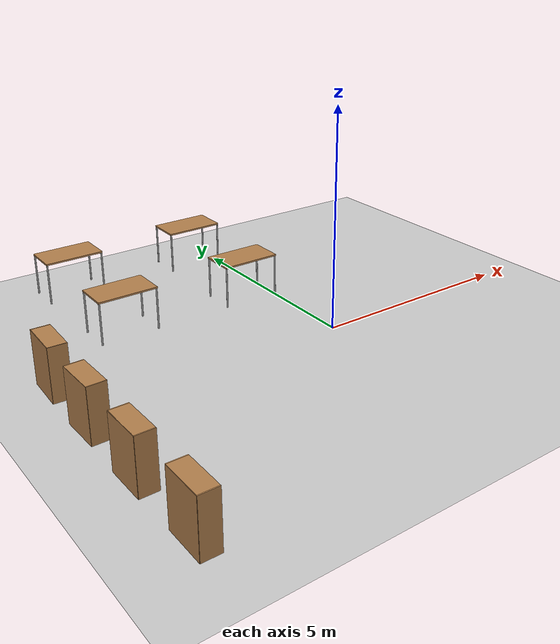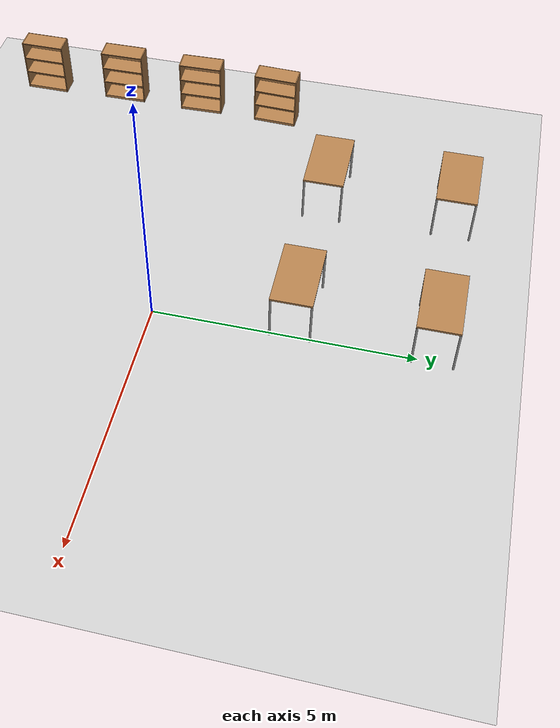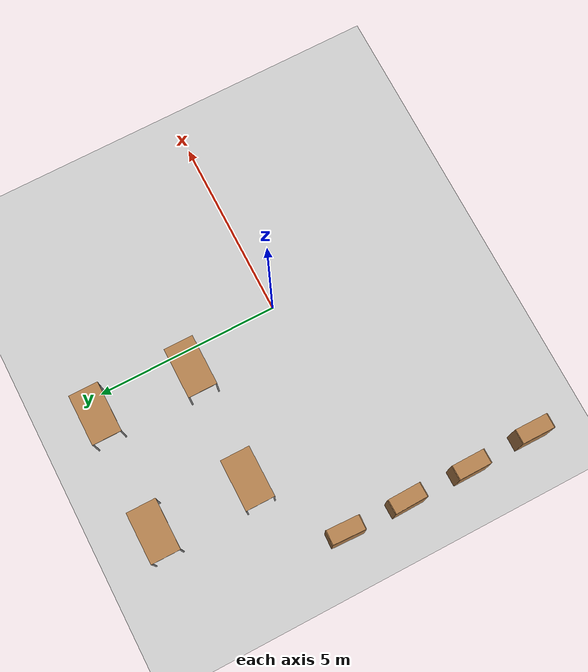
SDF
<sdf version="1.6">
 <world name="default">
  <light name="sun" type="directional">
   <pose>0 0 10 0 -0 0</pose>
   <diffuse>0.8 0.8 0.8 1</diffuse>
   <specular>0.1 0.1 0.1 1</specular>
   <attenuation>
    <range>1000</range>
    <constant>0.9</constant>
    <linear>0.01</linear>
    <quadratic>0.001</quadratic>
   </attenuation>
   <direction>-0.5 0.5 -1</direction>
  </light>
  <model name="ground_plane">
   <static>1</static>
   <link name="link">
    <collision name="collision">
     <geometry><plane><normal>0 0 1</normal><size>100 100</size></plane></geometry>
     <surface><friction><ode><mu>100</mu><mu2>50</mu2></ode></friction></surface>
    </collision>
    <visual name="visual">
     <cast_shadows>0</cast_shadows>
     <geometry><plane><normal>0 0 1</normal><size>100 100</size></plane></geometry>
     <material>
      <script><uri>file://media/materials/scripts/gazebo.material</uri><name>Gazebo/Grey</name></script>
     </material>
    </visual>
   </link>
  </model>
  <gravity>0 0 -9.8</gravity>
  <magnetic_field>6e-06 2.3e-05 -4.2e-05</magnetic_field>
  <atmosphere type="adiabatic"/>
  <physics name="default_physics" default="0" type="ode">
   <max_step_size>0.001</max_step_size>
   <real_time_factor>1</real_time_factor>
   <real_time_update_rate>1000</real_time_update_rate>
  </physics>
  <scene><ambient>0.4 0.4 0.4 1</ambient><background>0.7 0.7 0.7 1</background><shadows>1</shadows></scene>
  <spherical_coordinates>
   <surface_model>EARTH_WGS84</surface_model>
   <latitude_deg>0</latitude_deg>
   <longitude_deg>0</longitude_deg>
   <elevation>0</elevation>
   <heading_deg>0</heading_deg>
  </spherical_coordinates>
  <model name="table">
   <static>0</static>
   <link name="link">
    <collision name="surface">
     <pose>0 0 1 0 -0 0</pose>
     <geometry><box><size>1.5 0.8 0.03</size></box></geometry>
     <surface><friction><ode><mu>0.6</mu><mu2>0.6</mu2></ode></friction></surface>
    </collision>
    <visual name="visual1">
     <pose>0 0 1 0 -0 0</pose>
     <geometry><box><size>1.4 0.8 0.04</size></box></geometry>
     <material>
      <script><uri>file://media/materials/scripts/gazebo.material</uri><name>Gazebo/Wood</name></script>
     </material>
    </visual>
    <collision name="front_left_leg">
     <pose>0.68 0.38 0.5 0 -0 0</pose>
     <geometry><cylinder><radius>0.02</radius><length>1</length></cylinder></geometry>
    </collision>
    <visual name="front_left_leg">
     <pose>0.68 0.38 0.5 0 -0 0</pose>
     <geometry><cylinder><radius>0.02</radius><length>1</length></cylinder></geometry>
     <material>
      <script><uri>file://media/materials/scripts/gazebo.material</uri><name>Gazebo/Grey</name></script>
     </material>
    </visual>
    <collision name="front_right_leg">
     <pose>0.68 -0.38 0.5 0 -0 0</pose>
     <geometry><cylinder><radius>0.02</radius><length>1</length></cylinder></geometry>
    </collision>
    <visual name="front_right_leg">
     <pose>0.68 -0.38 0.5 0 -0 0</pose>
     <geometry><cylinder><radius>0.02</radius><length>1</length></cylinder></geometry>
     <material>
      <script><uri>file://media/materials/scripts/gazebo.material</uri><name>Gazebo/Grey</name></script>
     </material>
    </visual>
    <collision name="back_right_leg">
     <pose>-0.68 -0.38 0.5 0 -0 0</pose>
     <geometry><cylinder><radius>0.02</radius><length>1</length></cylinder></geometry>
    </collision>
    <visual name="back_right_leg">
     <pose>-0.68 -0.38 0.5 0 -0 0</pose>
     <geometry><cylinder><radius>0.02</radius><length>1</length></cylinder></geometry>
     <material>
      <script><uri>file://media/materials/scripts/gazebo.material</uri><name>Gazebo/Grey</name></script>
     </material>
    </visual>
    <collision name="back_left_leg">
     <pose>-0.68 0.38 0.5 0 -0 0</pose>
     <geometry><cylinder><radius>0.02</radius><length>1</length></cylinder></geometry>
    </collision>
    <visual name="back_left_leg">
     <pose>-0.68 0.38 0.5 0 -0 0</pose>
     <geometry><cylinder><radius>0.02</radius><length>1</length></cylinder></geometry>
     <material>
      <script><uri>file://media/materials/scripts/gazebo.material</uri><name>Gazebo/Grey</name></script>
     </material>
    </visual>
    <inertial>
     <inertia><ixx>1</ixx><ixy>0</ixy><ixz>0</ixz><iyy>1</iyy><iyz>0</iyz><izz>1</izz></inertia>
     <mass>1</mass>
    </inertial>
   </link>
   <pose>-3.81618 2.64389 -1e-06 -1e-06 0 0</pose>
  </model>
  <model name="table_0">
   <static>0</static>
   <link name="link">
    <collision name="surface">
     <pose>0 0 1 0 -0 0</pose>
     <geometry><box><size>1.5 0.8 0.03</size></box></geometry>
     <surface><friction><ode><mu>0.6</mu><mu2>0.6</mu2></ode></friction></surface>
    </collision>
    <visual name="visual1">
     <pose>0 0 1 0 -0 0</pose>
     <geometry><box><size>1.4 0.8 0.04</size></box></geometry>
     <material>
      <script><uri>file://media/materials/scripts/gazebo.material</uri><name>Gazebo/Wood</name></script>
     </material>
    </visual>
    <collision name="front_left_leg">
     <pose>0.68 0.38 0.5 0 -0 0</pose>
     <geometry><cylinder><radius>0.02</radius><length>1</length></cylinder></geometry>
    </collision>
    <visual name="front_left_leg">
     <pose>0.68 0.38 0.5 0 -0 0</pose>
     <geometry><cylinder><radius>0.02</radius><length>1</length></cylinder></geometry>
     <material>
      <script><uri>file://media/materials/scripts/gazebo.material</uri><name>Gazebo/Grey</name></script>
     </material>
    </visual>
    <collision name="front_right_leg">
     <pose>0.68 -0.38 0.5 0 -0 0</pose>
     <geometry><cylinder><radius>0.02</radius><length>1</length></cylinder></geometry>
    </collision>
    <visual name="front_right_leg">
     <pose>0.68 -0.38 0.5 0 -0 0</pose>
     <geometry><cylinder><radius>0.02</radius><length>1</length></cylinder></geometry>
     <material>
      <script><uri>file://media/materials/scripts/gazebo.material</uri><name>Gazebo/Grey</name></script>
     </material>
    </visual>
    <collision name="back_right_leg">
     <pose>-0.68 -0.38 0.5 0 -0 0</pose>
     <geometry><cylinder><radius>0.02</radius><length>1</length></cylinder></geometry>
    </collision>
    <visual name="back_right_leg">
     <pose>-0.68 -0.38 0.5 0 -0 0</pose>
     <geometry><cylinder><radius>0.02</radius><length>1</length></cylinder></geometry>
     <material>
      <script><uri>file://media/materials/scripts/gazebo.material</uri><name>Gazebo/Grey</name></script>
     </material>
    </visual>
    <collision name="back_left_leg">
     <pose>-0.68 0.38 0.5 0 -0 0</pose>
     <geometry><cylinder><radius>0.02</radius><length>1</length></cylinder></geometry>
    </collision>
    <visual name="back_left_leg">
     <pose>-0.68 0.38 0.5 0 -0 0</pose>
     <geometry><cylinder><radius>0.02</radius><length>1</length></cylinder></geometry>
     <material>
      <script><uri>file://media/materials/scripts/gazebo.material</uri><name>Gazebo/Grey</name></script>
     </material>
    </visual>
    <inertial>
     <inertia><ixx>1</ixx><ixy>0</ixy><ixz>0</ixz><iyy>1</iyy><iyz>0</iyz><izz>1</izz></inertia>
     <mass>1</mass>
    </inertial>
   </link>
   <pose>-3.89553 5.25285 -1e-06 -2e-06 0 0</pose>
  </model>
  <model name="table_1">
   <static>0</static>
   <link name="link">
    <collision name="surface">
     <pose>0 0 1 0 -0 0</pose>
     <geometry><box><size>1.5 0.8 0.03</size></box></geometry>
     <surface><friction><ode><mu>0.6</mu><mu2>0.6</mu2></ode></friction></surface>
    </collision>
    <visual name="visual1">
     <pose>0 0 1 0 -0 0</pose>
     <geometry><box><size>1.4 0.8 0.04</size></box></geometry>
     <material>
      <script><uri>file://media/materials/scripts/gazebo.material</uri><name>Gazebo/Wood</name></script>
     </material>
    </visual>
    <collision name="front_left_leg">
     <pose>0.68 0.38 0.5 0 -0 0</pose>
     <geometry><cylinder><radius>0.02</radius><length>1</length></cylinder></geometry>
    </collision>
    <visual name="front_left_leg">
     <pose>0.68 0.38 0.5 0 -0 0</pose>
     <geometry><cylinder><radius>0.02</radius><length>1</length></cylinder></geometry>
     <material>
      <script><uri>file://media/materials/scripts/gazebo.material</uri><name>Gazebo/Grey</name></script>
     </material>
    </visual>
    <collision name="front_right_leg">
     <pose>0.68 -0.38 0.5 0 -0 0</pose>
     <geometry><cylinder><radius>0.02</radius><length>1</length></cylinder></geometry>
    </collision>
    <visual name="front_right_leg">
     <pose>0.68 -0.38 0.5 0 -0 0</pose>
     <geometry><cylinder><radius>0.02</radius><length>1</length></cylinder></geometry>
     <material>
      <script><uri>file://media/materials/scripts/gazebo.material</uri><name>Gazebo/Grey</name></script>
     </material>
    </visual>
    <collision name="back_right_leg">
     <pose>-0.68 -0.38 0.5 0 -0 0</pose>
     <geometry><cylinder><radius>0.02</radius><length>1</length></cylinder></geometry>
    </collision>
    <visual name="back_right_leg">
     <pose>-0.68 -0.38 0.5 0 -0 0</pose>
     <geometry><cylinder><radius>0.02</radius><length>1</length></cylinder></geometry>
     <material>
      <script><uri>file://media/materials/scripts/gazebo.material</uri><name>Gazebo/Grey</name></script>
     </material>
    </visual>
    <collision name="back_left_leg">
     <pose>-0.68 0.38 0.5 0 -0 0</pose>
     <geometry><cylinder><radius>0.02</radius><length>1</length></cylinder></geometry>
    </collision>
    <visual name="back_left_leg">
     <pose>-0.68 0.38 0.5 0 -0 0</pose>
     <geometry><cylinder><radius>0.02</radius><length>1</length></cylinder></geometry>
     <material>
      <script><uri>file://media/materials/scripts/gazebo.material</uri><name>Gazebo/Grey</name></script>
     </material>
    </visual>
    <inertial>
     <inertia><ixx>1</ixx><ixy>0</ixy><ixz>0</ixz><iyy>1</iyy><iyz>0</iyz><izz>1</izz></inertia>
     <mass>1</mass>
    </inertial>
   </link>
   <pose>-0.642896 2.63775 -6e-06 2e-06 -5e-06 -0</pose>
  </model>
  <model name="table_2">
   <static>0</static>
   <link name="link">
    <collision name="surface">
     <pose>0 0 1 0 -0 0</pose>
     <geometry><box><size>1.5 0.8 0.03</size></box></geometry>
     <surface><friction><ode><mu>0.6</mu><mu2>0.6</mu2></ode></friction></surface>
    </collision>
    <visual name="visual1">
     <pose>0 0 1 0 -0 0</pose>
     <geometry><box><size>1.4 0.8 0.04</size></box></geometry>
     <material>
      <script><uri>file://media/materials/scripts/gazebo.material</uri><name>Gazebo/Wood</name></script>
     </material>
    </visual>
    <collision name="front_left_leg">
     <pose>0.68 0.38 0.5 0 -0 0</pose>
     <geometry><cylinder><radius>0.02</radius><length>1</length></cylinder></geometry>
    </collision>
    <visual name="front_left_leg">
     <pose>0.68 0.38 0.5 0 -0 0</pose>
     <geometry><cylinder><radius>0.02</radius><length>1</length></cylinder></geometry>
     <material>
      <script><uri>file://media/materials/scripts/gazebo.material</uri><name>Gazebo/Grey</name></script>
     </material>
    </visual>
    <collision name="front_right_leg">
     <pose>0.68 -0.38 0.5 0 -0 0</pose>
     <geometry><cylinder><radius>0.02</radius><length>1</length></cylinder></geometry>
    </collision>
    <visual name="front_right_leg">
     <pose>0.68 -0.38 0.5 0 -0 0</pose>
     <geometry><cylinder><radius>0.02</radius><length>1</length></cylinder></geometry>
     <material>
      <script><uri>file://media/materials/scripts/gazebo.material</uri><name>Gazebo/Grey</name></script>
     </material>
    </visual>
    <collision name="back_right_leg">
     <pose>-0.68 -0.38 0.5 0 -0 0</pose>
     <geometry><cylinder><radius>0.02</radius><length>1</length></cylinder></geometry>
    </collision>
    <visual name="back_right_leg">
     <pose>-0.68 -0.38 0.5 0 -0 0</pose>
     <geometry><cylinder><radius>0.02</radius><length>1</length></cylinder></geometry>
     <material>
      <script><uri>file://media/materials/scripts/gazebo.material</uri><name>Gazebo/Grey</name></script>
     </material>
    </visual>
    <collision name="back_left_leg">
     <pose>-0.68 0.38 0.5 0 -0 0</pose>
     <geometry><cylinder><radius>0.02</radius><length>1</length></cylinder></geometry>
    </collision>
    <visual name="back_left_leg">
     <pose>-0.68 0.38 0.5 0 -0 0</pose>
     <geometry><cylinder><radius>0.02</radius><length>1</length></cylinder></geometry>
     <material>
      <script><uri>file://media/materials/scripts/gazebo.material</uri><name>Gazebo/Grey</name></script>
     </material>
    </visual>
    <inertial>
     <inertia><ixx>1</ixx><ixy>0</ixy><ixz>0</ixz><iyy>1</iyy><iyz>0</iyz><izz>1</izz></inertia>
     <mass>1</mass>
    </inertial>
   </link>
   <pose>-0.611044 5.27252 -8e-06 1e-06 -0 0</pose>
  </model>
  <model name="bookshelf_0">
   <static>1</static>
   <link name="link">
    <inertial><mass>1</mass></inertial>
    <collision name="back">
     <pose>0 0.005 0.6 0 -0 0</pose>
     <geometry><box><size>0.9 0.01 1.2</size></box></geometry>
    </collision>
    <visual name="visual1">
     <pose>0 0.005 0.6 0 -0 0</pose>
     <geometry><box><size>0.9 0.01 1.2</size></box></geometry>
     <material>
      <script><uri>file://media/materials/scripts/gazebo.material</uri><name>Gazebo/Wood</name></script>
     </material>
    </visual>
    <collision name="left_side">
     <pose>0.45 -0.195 0.6 0 -0 0</pose>
     <geometry><box><size>0.02 0.4 1.2</size></box></geometry>
    </collision>
    <visual name="visual2">
     <pose>0.45 -0.195 0.6 0 -0 0</pose>
     <geometry><box><size>0.02 0.4 1.2</size></box></geometry>
     <material>
      <script><uri>file://media/materials/scripts/gazebo.material</uri><name>Gazebo/Wood</name></script>
     </material>
    </visual>
    <collision name="right_side">
     <pose>-0.45 -0.195 0.6 0 -0 0</pose>
     <geometry><box><size>0.02 0.4 1.2</size></box></geometry>
    </collision>
    <visual name="visual3">
     <pose>-0.45 -0.195 0.6 0 -0 0</pose>
     <geometry><box><size>0.02 0.4 1.2</size></box></geometry>
     <material>
      <script><uri>file://media/materials/scripts/gazebo.material</uri><name>Gazebo/Wood</name></script>
     </material>
    </visual>
    <collision name="bottom">
     <pose>0 -0.195 0.03 0 -0 0</pose>
     <geometry><box><size>0.88 0.4 0.06</size></box></geometry>
    </collision>
    <visual name="visual4">
     <pose>0 -0.195 0.03 0 -0 0</pose>
     <geometry><box><size>0.88 0.4 0.06</size></box></geometry>
     <material>
      <script><uri>file://media/materials/scripts/gazebo.material</uri><name>Gazebo/Wood</name></script>
     </material>
    </visual>
    <collision name="top">
     <pose>0 -0.195 1.19 0 -0 0</pose>
     <geometry><box><size>0.88 0.4 0.02</size></box></geometry>
    </collision>
    <visual name="visual5">
     <pose>0 -0.195 1.19 0 -0 0</pose>
     <geometry><box><size>0.88 0.4 0.02</size></box></geometry>
     <material>
      <script><uri>file://media/materials/scripts/gazebo.material</uri><name>Gazebo/Wood</name></script>
     </material>
    </visual>
    <collision name="low_shelf">
     <pose>0 -0.195 0.43 0 -0 0</pose>
     <geometry><box><size>0.88 0.4 0.02</size></box></geometry>
    </collision>
    <visual name="visual6">
     <pose>0 -0.195 0.43 0 -0 0</pose>
     <geometry><box><size>0.88 0.4 0.02</size></box></geometry>
     <material>
      <script><uri>file://media/materials/scripts/gazebo.material</uri><name>Gazebo/Wood</name></script>
     </material>
    </visual>
    <collision name="high_shelf">
     <pose>0 -0.195 0.8 0 -0 0</pose>
     <geometry><box><size>0.88 0.4 0.02</size></box></geometry>
    </collision>
    <visual name="visual7">
     <pose>0 -0.195 0.8 0 -0 0</pose>
     <geometry><box><size>0.88 0.4 0.02</size></box></geometry>
     <material>
      <script><uri>file://media/materials/scripts/gazebo.material</uri><name>Gazebo/Wood</name></script>
     </material>
    </visual>
   </link>
   <pose>-6.23235 -4.18475 0 0 -0 1.56668</pose>
  </model>
  <model name="bookshelf_1">
   <static>1</static>
   <link name="link">
    <inertial><mass>1</mass></inertial>
    <collision name="back">
     <pose>0 0.005 0.6 0 -0 0</pose>
     <geometry><box><size>0.9 0.01 1.2</size></box></geometry>
    </collision>
    <visual name="visual1">
     <pose>0 0.005 0.6 0 -0 0</pose>
     <geometry><box><size>0.9 0.01 1.2</size></box></geometry>
     <material>
      <script><uri>file://media/materials/scripts/gazebo.material</uri><name>Gazebo/Wood</name></script>
     </material>
    </visual>
    <collision name="left_side">
     <pose>0.45 -0.195 0.6 0 -0 0</pose>
     <geometry><box><size>0.02 0.4 1.2</size></box></geometry>
    </collision>
    <visual name="visual2">
     <pose>0.45 -0.195 0.6 0 -0 0</pose>
     <geometry><box><size>0.02 0.4 1.2</size></box></geometry>
     <material>
      <script><uri>file://media/materials/scripts/gazebo.material</uri><name>Gazebo/Wood</name></script>
     </material>
    </visual>
    <collision name="right_side">
     <pose>-0.45 -0.195 0.6 0 -0 0</pose>
     <geometry><box><size>0.02 0.4 1.2</size></box></geometry>
    </collision>
    <visual name="visual3">
     <pose>-0.45 -0.195 0.6 0 -0 0</pose>
     <geometry><box><size>0.02 0.4 1.2</size></box></geometry>
     <material>
      <script><uri>file://media/materials/scripts/gazebo.material</uri><name>Gazebo/Wood</name></script>
     </material>
    </visual>
    <collision name="bottom">
     <pose>0 -0.195 0.03 0 -0 0</pose>
     <geometry><box><size>0.88 0.4 0.06</size></box></geometry>
    </collision>
    <visual name="visual4">
     <pose>0 -0.195 0.03 0 -0 0</pose>
     <geometry><box><size>0.88 0.4 0.06</size></box></geometry>
     <material>
      <script><uri>file://media/materials/scripts/gazebo.material</uri><name>Gazebo/Wood</name></script>
     </material>
    </visual>
    <collision name="top">
     <pose>0 -0.195 1.19 0 -0 0</pose>
     <geometry><box><size>0.88 0.4 0.02</size></box></geometry>
    </collision>
    <visual name="visual5">
     <pose>0 -0.195 1.19 0 -0 0</pose>
     <geometry><box><size>0.88 0.4 0.02</size></box></geometry>
     <material>
      <script><uri>file://media/materials/scripts/gazebo.material</uri><name>Gazebo/Wood</name></script>
     </material>
    </visual>
    <collision name="low_shelf">
     <pose>0 -0.195 0.43 0 -0 0</pose>
     <geometry><box><size>0.88 0.4 0.02</size></box></geometry>
    </collision>
    <visual name="visual6">
     <pose>0 -0.195 0.43 0 -0 0</pose>
     <geometry><box><size>0.88 0.4 0.02</size></box></geometry>
     <material>
      <script><uri>file://media/materials/scripts/gazebo.material</uri><name>Gazebo/Wood</name></script>
     </material>
    </visual>
    <collision name="high_shelf">
     <pose>0 -0.195 0.8 0 -0 0</pose>
     <geometry><box><size>0.88 0.4 0.02</size></box></geometry>
    </collision>
    <visual name="visual7">
     <pose>0 -0.195 0.8 0 -0 0</pose>
     <geometry><box><size>0.88 0.4 0.02</size></box></geometry>
     <material>
      <script><uri>file://media/materials/scripts/gazebo.material</uri><name>Gazebo/Wood</name></script>
     </material>
    </visual>
   </link>
   <pose>-6.27963 -2.36915 0 0 -0 1.57911</pose>
  </model>
  <model name="bookshelf_2">
   <static>1</static>
   <link name="link">
    <inertial><mass>1</mass></inertial>
    <collision name="back">
     <pose>0 0.005 0.6 0 -0 0</pose>
     <geometry><box><size>0.9 0.01 1.2</size></box></geometry>
    </collision>
    <visual name="visual1">
     <pose>0 0.005 0.6 0 -0 0</pose>
     <geometry><box><size>0.9 0.01 1.2</size></box></geometry>
     <material>
      <script><uri>file://media/materials/scripts/gazebo.material</uri><name>Gazebo/Wood</name></script>
     </material>
    </visual>
    <collision name="left_side">
     <pose>0.45 -0.195 0.6 0 -0 0</pose>
     <geometry><box><size>0.02 0.4 1.2</size></box></geometry>
    </collision>
    <visual name="visual2">
     <pose>0.45 -0.195 0.6 0 -0 0</pose>
     <geometry><box><size>0.02 0.4 1.2</size></box></geometry>
     <material>
      <script><uri>file://media/materials/scripts/gazebo.material</uri><name>Gazebo/Wood</name></script>
     </material>
    </visual>
    <collision name="right_side">
     <pose>-0.45 -0.195 0.6 0 -0 0</pose>
     <geometry><box><size>0.02 0.4 1.2</size></box></geometry>
    </collision>
    <visual name="visual3">
     <pose>-0.45 -0.195 0.6 0 -0 0</pose>
     <geometry><box><size>0.02 0.4 1.2</size></box></geometry>
     <material>
      <script><uri>file://media/materials/scripts/gazebo.material</uri><name>Gazebo/Wood</name></script>
     </material>
    </visual>
    <collision name="bottom">
     <pose>0 -0.195 0.03 0 -0 0</pose>
     <geometry><box><size>0.88 0.4 0.06</size></box></geometry>
    </collision>
    <visual name="visual4">
     <pose>0 -0.195 0.03 0 -0 0</pose>
     <geometry><box><size>0.88 0.4 0.06</size></box></geometry>
     <material>
      <script><uri>file://media/materials/scripts/gazebo.material</uri><name>Gazebo/Wood</name></script>
     </material>
    </visual>
    <collision name="top">
     <pose>0 -0.195 1.19 0 -0 0</pose>
     <geometry><box><size>0.88 0.4 0.02</size></box></geometry>
    </collision>
    <visual name="visual5">
     <pose>0 -0.195 1.19 0 -0 0</pose>
     <geometry><box><size>0.88 0.4 0.02</size></box></geometry>
     <material>
      <script><uri>file://media/materials/scripts/gazebo.material</uri><name>Gazebo/Wood</name></script>
     </material>
    </visual>
    <collision name="low_shelf">
     <pose>0 -0.195 0.43 0 -0 0</pose>
     <geometry><box><size>0.88 0.4 0.02</size></box></geometry>
    </collision>
    <visual name="visual6">
     <pose>0 -0.195 0.43 0 -0 0</pose>
     <geometry><box><size>0.88 0.4 0.02</size></box></geometry>
     <material>
      <script><uri>file://media/materials/scripts/gazebo.material</uri><name>Gazebo/Wood</name></script>
     </material>
    </visual>
    <collision name="high_shelf">
     <pose>0 -0.195 0.8 0 -0 0</pose>
     <geometry><box><size>0.88 0.4 0.02</size></box></geometry>
    </collision>
    <visual name="visual7">
     <pose>0 -0.195 0.8 0 -0 0</pose>
     <geometry><box><size>0.88 0.4 0.02</size></box></geometry>
     <material>
      <script><uri>file://media/materials/scripts/gazebo.material</uri><name>Gazebo/Wood</name></script>
     </material>
    </visual>
   </link>
   <pose>-6.27269 -0.591138 0 0 -0 1.59319</pose>
  </model>
  <model name="bookshelf_3">
   <static>1</static>
   <link name="link">
    <inertial><mass>1</mass></inertial>
    <collision name="back">
     <pose>0 0.005 0.6 0 -0 0</pose>
     <geometry><box><size>0.9 0.01 1.2</size></box></geometry>
    </collision>
    <visual name="visual1">
     <pose>0 0.005 0.6 0 -0 0</pose>
     <geometry><box><size>0.9 0.01 1.2</size></box></geometry>
     <material>
      <script><uri>file://media/materials/scripts/gazebo.material</uri><name>Gazebo/Wood</name></script>
     </material>
    </visual>
    <collision name="left_side">
     <pose>0.45 -0.195 0.6 0 -0 0</pose>
     <geometry><box><size>0.02 0.4 1.2</size></box></geometry>
    </collision>
    <visual name="visual2">
     <pose>0.45 -0.195 0.6 0 -0 0</pose>
     <geometry><box><size>0.02 0.4 1.2</size></box></geometry>
     <material>
      <script><uri>file://media/materials/scripts/gazebo.material</uri><name>Gazebo/Wood</name></script>
     </material>
    </visual>
    <collision name="right_side">
     <pose>-0.45 -0.195 0.6 0 -0 0</pose>
     <geometry><box><size>0.02 0.4 1.2</size></box></geometry>
    </collision>
    <visual name="visual3">
     <pose>-0.45 -0.195 0.6 0 -0 0</pose>
     <geometry><box><size>0.02 0.4 1.2</size></box></geometry>
     <material>
      <script><uri>file://media/materials/scripts/gazebo.material</uri><name>Gazebo/Wood</name></script>
     </material>
    </visual>
    <collision name="bottom">
     <pose>0 -0.195 0.03 0 -0 0</pose>
     <geometry><box><size>0.88 0.4 0.06</size></box></geometry>
    </collision>
    <visual name="visual4">
     <pose>0 -0.195 0.03 0 -0 0</pose>
     <geometry><box><size>0.88 0.4 0.06</size></box></geometry>
     <material>
      <script><uri>file://media/materials/scripts/gazebo.material</uri><name>Gazebo/Wood</name></script>
     </material>
    </visual>
    <collision name="top">
     <pose>0 -0.195 1.19 0 -0 0</pose>
     <geometry><box><size>0.88 0.4 0.02</size></box></geometry>
    </collision>
    <visual name="visual5">
     <pose>0 -0.195 1.19 0 -0 0</pose>
     <geometry><box><size>0.88 0.4 0.02</size></box></geometry>
     <material>
      <script><uri>file://media/materials/scripts/gazebo.material</uri><name>Gazebo/Wood</name></script>
     </material>
    </visual>
    <collision name="low_shelf">
     <pose>0 -0.195 0.43 0 -0 0</pose>
     <geometry><box><size>0.88 0.4 0.02</size></box></geometry>
    </collision>
    <visual name="visual6">
     <pose>0 -0.195 0.43 0 -0 0</pose>
     <geometry><box><size>0.88 0.4 0.02</size></box></geometry>
     <material>
      <script><uri>file://media/materials/scripts/gazebo.material</uri><name>Gazebo/Wood</name></script>
     </material>
    </visual>
    <collision name="high_shelf">
     <pose>0 -0.195 0.8 0 -0 0</pose>
     <geometry><box><size>0.88 0.4 0.02</size></box></geometry>
    </collision>
    <visual name="visual7">
     <pose>0 -0.195 0.8 0 -0 0</pose>
     <geometry><box><size>0.88 0.4 0.02</size></box></geometry>
     <material>
      <script><uri>file://media/materials/scripts/gazebo.material</uri><name>Gazebo/Wood</name></script>
     </material>
    </visual>
   </link>
   <pose>-6.24553 1.11352 0 0 -0 1.53215</pose>
  </model>
 </world>
</sdf>
